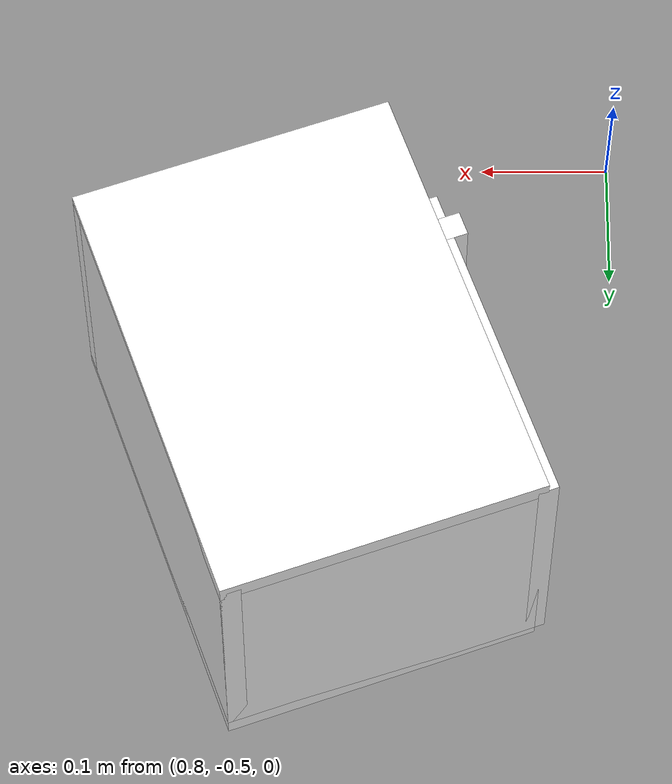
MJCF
<mujoco model="cabinet">
    <compiler angle="radian" eulerseq='zxy' />
    <option gravity = "0 0 0" />
    <option>
        <flag contact = "disable"/>
    </option>
    <statistic	extent="1.0" center="0.0 0.0 0.0"/>
    <visual>
        <map fogstart="3" fogend="5" force="0.1" znear=" 0.100000 " zfar=" 12.000000 "/>
    </visual>
    <size njmax="500" nconmax="100" />
    <actuator>
        <velocity joint="bottom_left_hinge" name="viva_revolution" kv='10'></velocity>
    </actuator>
    <asset>
        <texture builtin="flat" name="tabletex" height="32" width="32" rgb1="1 1 1" type="cube"></texture>
        <texture builtin="flat" name="objtex" height="32" width="32" rgb1="1 1 1" type="cube"></texture>
        <texture builtin="flat" name="handletex" height="32" width="32" rgb1="1 1 1" type="cube"></texture>
        <texture builtin="flat" name="wallpaper" height="32" width="32" rgb1="1 0 0" type="cube"></texture>
        <texture builtin="flat" name="kp" height="32" width="32" rgb1="1 1 1" type="cube"></texture>
        <material name="geomTable" shininess="0.03" specular="0.75" texture="tabletex"></material>
        <material name="geomObj" shininess="0.03" specular="0.75" texture="objtex"></material>
        <material name="geomHandle" shininess="0.03" specular="0.75" texture="handletex"></material>
        <material name="ax" shininess="0.03" specular="0.75" texture="wallpaper"></material>
        <material name="bg" shininess="0.03" specular="0.75" texture="wallpaper"></material>
        <material name="geomKeypad" shininess="0.03" specular="0.75" texture="kp"></material>
    </asset>
    <worldbody>
        <body name="cabinet_bottom" pos= " 1.039145 -0.328980 -0.230863 "  quat= " -0.171452 0.000000 0.000000 0.985193" >
            <inertial pos="0 0 0" mass="1" diaginertia="1 1 1" />
            <geom size= " 0.132914 0.181773 0.008421 "  type="box" material="geomObj" name="b"/>
            <body name="cabinet_left" pos= " 0.000000 -0.173352 0.128704 " >
                <inertial pos="0 0 0" mass="1" diaginertia="1 1 1" />
                <geom size= " 0.132914 0.008421 0.128704 "  type="box" material="geomObj" name="c" />
            </body>
            <body name="cabinet_right" pos= " 0.000000 0.173352 0.128704 " >
                <inertial pos="0 0 0" mass="1" diaginertia="1 1 1" />
                <geom size= " 0.132914 0.008421 0.128704 "  type="box" material="geomObj" name="d" />
            </body>
            <body name="cabinet_top" pos= " 0.000000 0.000000 0.257408 " >
                <inertial pos="0 0 0" mass="1" diaginertia="1 1 1" />
                <geom size= " 0.132914 0.181773 0.008421 "  type="box" material="geomObj" name="e"/>
            </body>
            <body name="cabinet_back" pos= " -0.124493 0.000000 0.128704 "  >
                <inertial pos="0 0 0" mass="1" diaginertia="1 1 1" />
                <geom size= " 0.008421 0.181773 0.128704 "  type="box" material="geomObj" name="f" />
            </body>
            <body name="cabinet_keypad" pos= " 0.008421 0.135330 0.128704 " >
                <inertial pos="0 0 0" mass="1" diaginertia="1 1 1" />
                <geom size= " 0.124493 0.045443 0.120283 "  type="box" material="geomKeypad" name="keypizzlemynizzle" />
            </body>
            <body name="cabinet_left_hinge" pos= " 0.132914 -0.181773 0.128704 " >
                <inertial pos= " 0.000000 0.136330 0.000000 "  mass="1" diaginertia="1 1 1" />
                <joint name="bottom_left_hinge" type="hinge" pos="0 0 0" axis="0 0 1" limited="true" range= "-2.3 0"  />
                <geom size= " 0.008421 0.136330 0.128704 "  pos= " 0.000000 0.136330 0.000000 "  type="box" material="geomObj" name="g"/>
                <body name="handle_link" pos= " 0.010000 0.242659 0.000000 " >
                    <inertial pos="0 0 0" mass="1" diaginertia="1 1 1" />
                    <geom size= " 0.010000 0.010000 0.128704 "  type="box" material="geomHandle" name="h"/>
                </body>
            </body>
        </body>
        <body name="external_camera_body_0" pos="0.0 0 0.00" >
            <camera euler="-1.57 1.57 0.0" fovy=" 54.280851 " name="external_camera_0" pos="0.0 0 0"></camera>
            <inertial pos= " 0.00 0.0 0.000000 " mass="1" diaginertia="1 1 1" />
            <joint name="cam_j" pos="0.0 0 0" axis = "1 0 0" type="free" />
        </body>
    </worldbody>
</mujoco>
